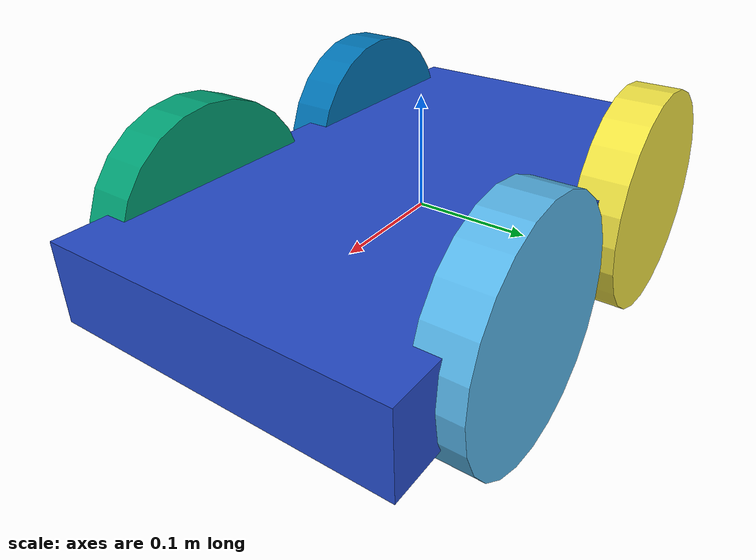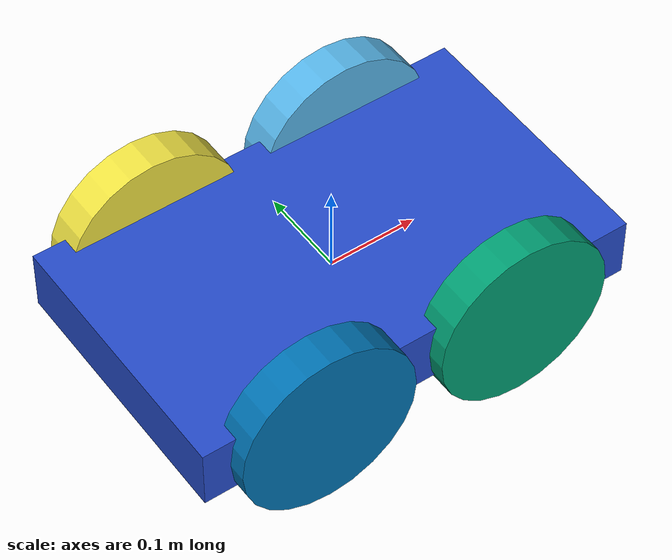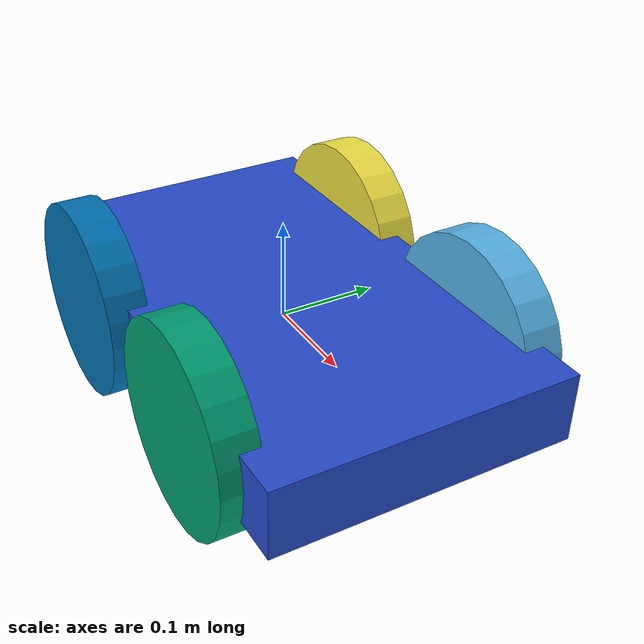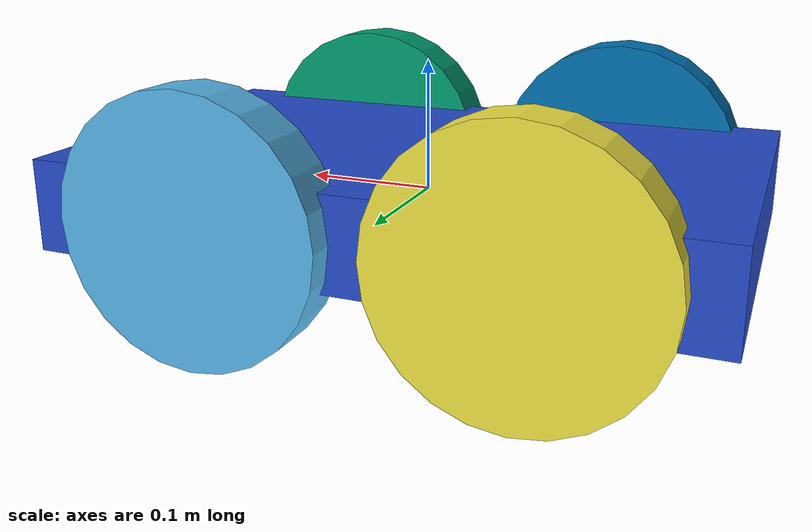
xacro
<?xml version="1.0" ?>
<robot name="robocluedo_robot" xmlns:xacro="http://www.ros.org/wiki/xacro">

    <link name="base_link">
        <!-- pose and inertial -->
        <pose>0 0 0.1 0 0 0</pose>

		<inertial>
            <mass value="0.5" />
            <origin rpy="0 0 0" xyz="0 0 0.1" />
            <inertia ixx="0.0395416666667" ixy="0" ixz="0" iyy="0.106208333333" iyz="0" izz="0.106208333333" />
        </inertial>

        <!-- chassis collision -->
        <collision name="collision_chassis">
            <geometry>
                <box size="0.5 0.3 0.07" />
            </geometry>
        </collision>
        <visual>
            <origin rpy="0 0 0" xyz="0 0 0" />
            <geometry>
                <box size="0.5 0.3 0.07" />
            </geometry>
            <material name="blue" />
        </visual>

        <!-- caster front collision -->
    </link>

    <link name="link_right_wheel">

		<inertial>
            <mass value="0.2" />
            <origin rpy="0 1.5707 1.5707" xyz="0 0 0" />
            <inertia ixx="0.000526666666667" ixy="0" ixz="0" iyy="0.000526666666667" iyz="0" izz="0.001" />
        </inertial>

        <collision name="link_right_wheel_collision">
            <origin rpy="0 1.5707 1.5707" xyz="0 0 0" />
            <geometry>
                <cylinder length="0.04" radius="0.1" />
            </geometry>
        </collision>
        <visual name="link_right_wheel_visual">
            <origin rpy="0 1.5707 1.5707" xyz="0 0 0" />
            <geometry>
                <cylinder length="0.04" radius="0.1" />
            </geometry>
        </visual>
    </link>

    <link name="link_left_wheel">
		<inertial>
            <mass value="0.2" />
            <origin rpy="0 1.5707 1.5707" xyz="0 0 0" />
            <inertia ixx="0.000526666666667" ixy="0" ixz="0" iyy="0.000526666666667" iyz="0" izz="0.001" />
        </inertial>

        <collision name="link_right_wheel_collision">
            <origin rpy="0 1.5707 1.5707" xyz="0 0 0" />
            <geometry>
                <cylinder length="0.04" radius="0.1" />
            </geometry>
        </collision>
        <visual name="link_left_wheel_visual">
            <origin rpy="0 1.5707 1.5707" xyz="0 0 0" />
            <geometry>
                <cylinder length="0.04" radius="0.1" />
            </geometry>
        </visual>
    </link>

    <joint name="joint_right_wheel" type="continuous">
        <origin rpy="0 0 0" xyz="0.11 0.15 0" />
        <child link="link_right_wheel" />
        <parent link="base_link" />
        <axis rpy="0 0 0" xyz="0 1 0" />
        <limit effort="10000" velocity="1000" />
        <joint_properties damping="1.0" friction="1.0" />
    </joint>
    <joint name="joint_left_wheel" type="continuous">
        <origin rpy="0 0 0" xyz="0.11 -0.15 0" />
        <child link="link_left_wheel" />
        <parent link="base_link" />
        <axis rpy="0 0 0" xyz="0 1 0" />
        <limit effort="10000" velocity="1000" />
        <joint_properties damping="1.0" friction="1.0" />
    </joint>

    <link name="link_a_right_wheel">

		<inertial>
            <mass value="0.2" />
            <origin rpy="0 1.5707 1.5707" xyz="0 0 0" />
            <inertia ixx="0.000526666666667" ixy="0" ixz="0" iyy="0.000526666666667" iyz="0" izz="0.001" />
        </inertial>

        <collision name="link_right_wheel_collision">
            <origin rpy="0 1.5707 1.5707" xyz="0 0 0" />
            <geometry>
                <cylinder length="0.04" radius="0.1" />
            </geometry>
            <surface>
                <friction>
                    <ode>
                        <mu>0</mu>
                        <mu2>0</mu2>
                        <slip1>1.0</slip1>
                        <slip2>1.0</slip2>
                    </ode>
                </friction>
            </surface>
        </collision>
        <visual name="link_right_wheel_visual">
            <origin rpy="0 1.5707 1.5707" xyz="0 0 0" />
            <geometry>
                <cylinder length="0.04" radius="0.1" />
            </geometry>
        </visual>
    </link>

    <link name="link_a_left_wheel">
		<inertial>
            <mass value="0.2" />
            <origin rpy="0 1.5707 1.5707" xyz="0 0 0" />
            <inertia ixx="0.000526666666667" ixy="0" ixz="0" iyy="0.000526666666667" iyz="0" izz="0.001" />
        </inertial>

        <collision name="link_right_wheel_collision">
            <origin rpy="0 1.5707 1.5707" xyz="0 0 0" />
            <geometry>
                <cylinder length="0.04" radius="0.1" />
            </geometry>
            <surface>
                <friction>
                    <ode>
                        <mu>0</mu>
                        <mu2>0</mu2>
                        <slip1>1.0</slip1>
                        <slip2>1.0</slip2>
                    </ode>
                </friction>
            </surface>
        </collision>
        <visual name="link_left_wheel_visual">
            <origin rpy="0 1.5707 1.5707" xyz="0 0 0" />
            <geometry>
                <cylinder length="0.04" radius="0.1" />
            </geometry>
        </visual>
    </link>

    <joint name="joint_a_right_wheel" type="continuous">
        <origin rpy="0 0 0" xyz="-0.12 0.15 0" />
        <child link="link_a_right_wheel" />
        <parent link="base_link" />
        <axis rpy="0 0 0" xyz="0 1 0" />
        <limit effort="10000" velocity="1000" />
        <joint_properties damping="1.0" friction="1.0" />
    </joint>
    <joint name="joint_a_left_wheel" type="continuous">
        <origin rpy="0 0 0" xyz="-0.12 -0.15 0" />
        <child link="link_a_left_wheel" />
        <parent link="base_link" />
        <axis rpy="0 0 0" xyz="0 1 0" />
        <limit effort="10000" velocity="1000" />
        <joint_properties damping="1.0" friction="1.0" />
    </joint>
</robot>
